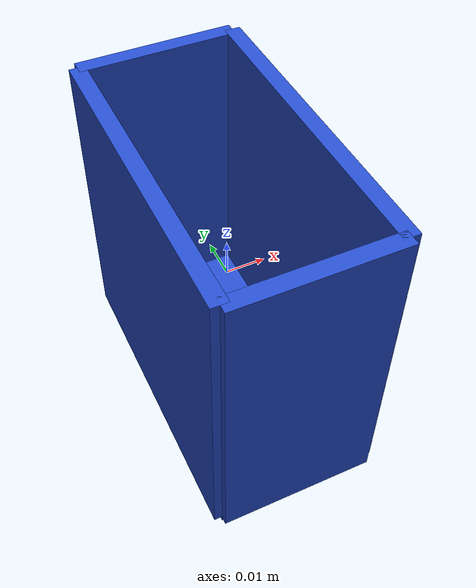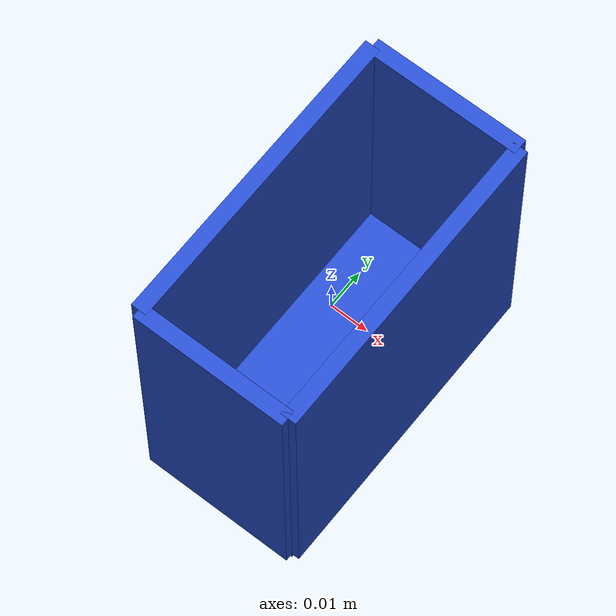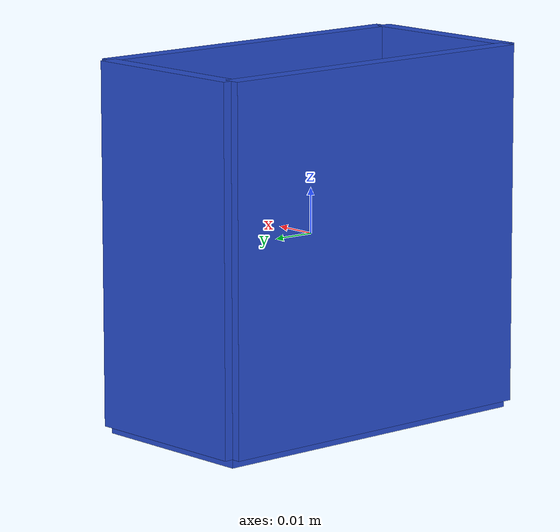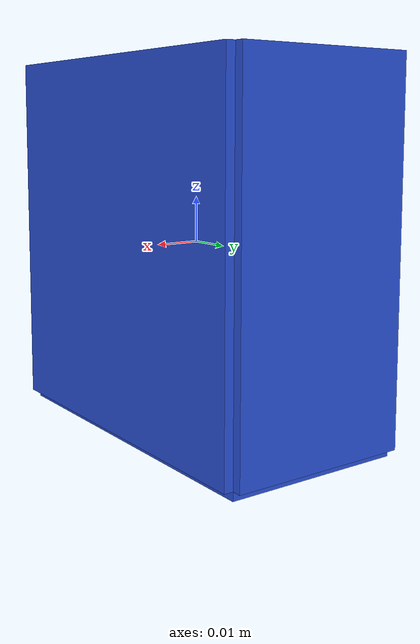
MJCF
<mujoco model="refrigerator-box">
  <asset>
    <texture file="../textures/blue-wood.png" type="cube" name="steel-metal"/>
    <material name="smetal" reflectance="1.0" shininess="1.0" specular="1.0" texrepeat="1 1" texture="steel-metal" texuniform="true"/>
  </asset>
  <worldbody>
    <body>
      <body name="object">
        <geom pos=" 0.02 0 0.0" size="0.002 0.04 0.04" type="box" solimp="0.998 0.998 0.001" solref="0.02 1" density="100" friction="0.95 0.3 0.1" group="0" condim="4" material="smetal" />
        <geom pos="-0.02 0 0.0" size="0.002 0.04 0.04" type="box" solimp="0.998 0.998 0.001" solref="0.02 1" density="100" friction="0.95 0.3 0.1" group="0" condim="4" material="smetal" />
        <geom pos="0 -0.04 0.0" size="0.02 0.002 0.04" type="box" solimp="0.998 0.998 0.001" solref="0.02 1" density="100" friction="0.95 0.3 0.1" group="0" condim="4" material="smetal" />
        <geom pos="0 0.04 0.0"  size="0.02 0.002 0.04" type="box" solimp="0.998 0.998 0.001" solref="0.02 1" density="100" friction="0.95 0.3 0.1" group="0" condim="4" material="smetal" />
        <geom pos="0 0 -0.0399"  size="0.02 0.04 0.002" type="box" solimp="0.998 0.998 0.001" solref="0.02 1" density="100" friction="0.95 0.3 0.1" group="0" condim="4" material="smetal" />
      </body>
      <site rgba="0 0 0 0" size="0.005" pos="0 0 -0.1105" name="bottom_site"/>
      <site rgba="0 0 0 0" size="0.005" pos="0 0 0.1105" name="top_site"/>
      <site rgba="0 0 0 0" size="0.005" pos="0.0865 0.1005 0" name="horizontal_radius_site"/>
    </body>
  </worldbody>
</mujoco>
